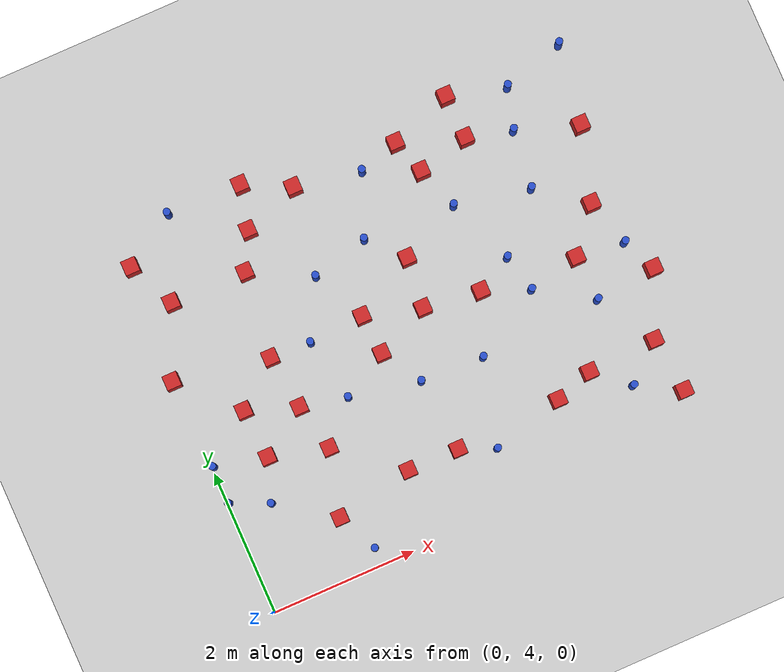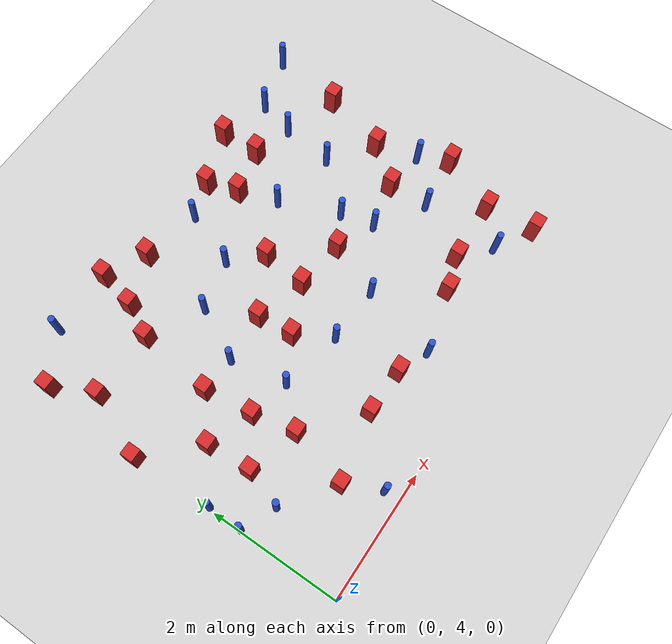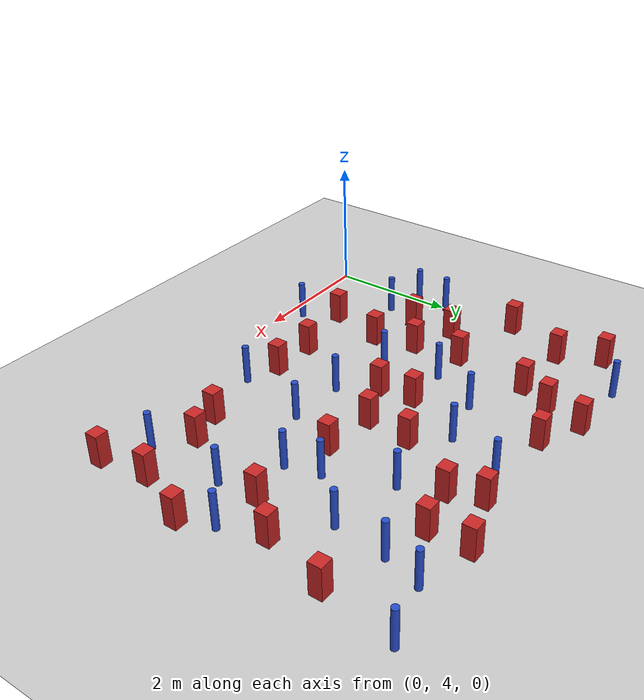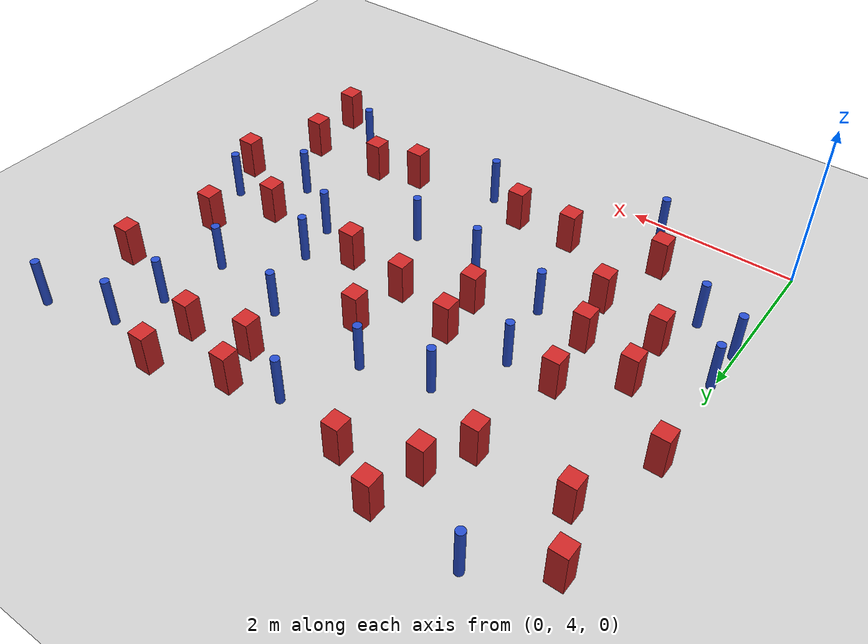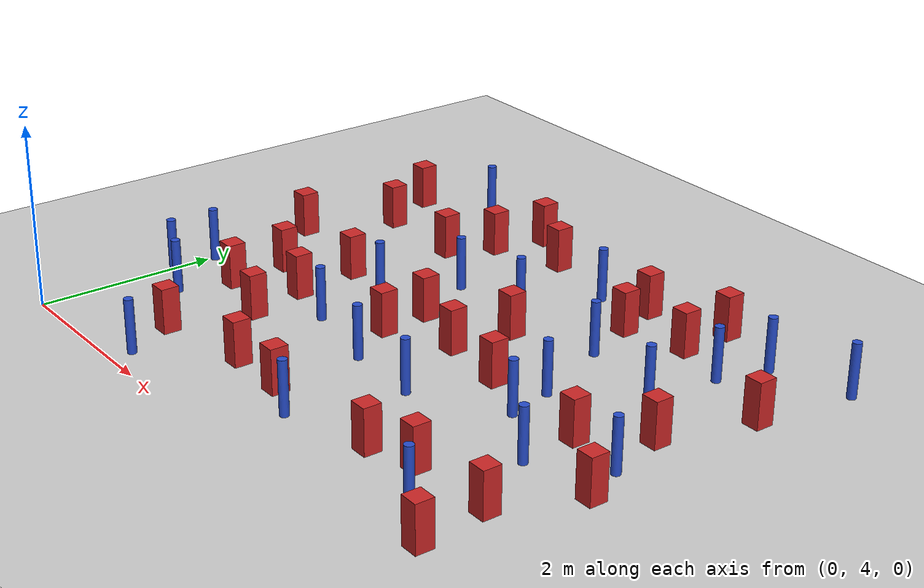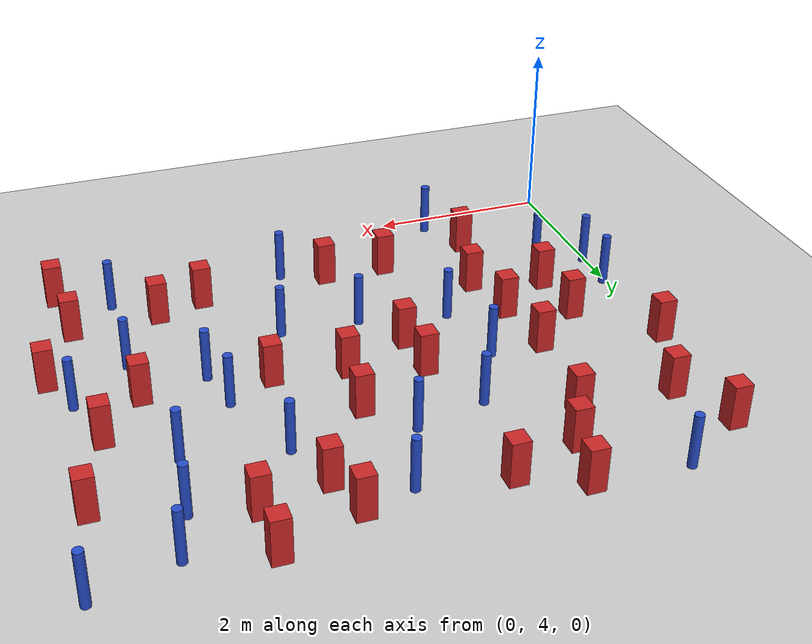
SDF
<sdf version="1.6">
 <world name="default">
  <model name="ground_plane">
   <static>1</static>
   <link name="link">
    <collision name="collision">
     <geometry><plane><normal>0 0 1</normal><size>100 100</size></plane></geometry>
     <surface><friction><ode><mu>100</mu><mu2>50</mu2></ode></friction></surface>
    </collision>
    <visual name="visual">
     <cast_shadows>0</cast_shadows>
     <geometry><plane><normal>0 0 1</normal><size>100 100</size></plane></geometry>
     <material>
      <ambient>1.0 1.0 1.0 1.0</ambient>
      <diffuse>0.8 0.8 0.8 1.0</diffuse>
      <specular>0.01 0.01 0.01 1.000000</specular>
     </material>
    </visual>
   </link>
  </model>
  <model name="pole_obstacle1">
   <static>true</static>
   <pose>0.818938187911 9.38292226318 2.88873142074e-08 -9.90536690779e-09 4.60219948967e-07 -1.20965994975e-07</pose>
   <link name="link">
    <pose>0 0 0.3 0 -0 0</pose>
    <inertial>
     <mass>1</mass>
     <inertia><ixx>0.145833</ixx><ixy>0</ixy><ixz>0</ixz><iyy>0.145833</iyy><iyz>0</iyz><izz>0.125</izz></inertia>
    </inertial>
    <collision name="collision">
     <geometry><cylinder><radius>0.05</radius><length>.6</length></cylinder></geometry>
    </collision>
    <visual name="visual">
     <geometry><cylinder><radius>0.05</radius><length>.6</length></cylinder></geometry>
     <material>
      <script><name>Gazebo/Blue</name><uri>file://media/materials/scripts/gazebo.material</uri></script>
     </material>
    </visual>
   </link>
  </model>
  <model name="square_post_obstacle10">
   <static>true</static>
   <pose>3.07662224585 4.99544792653 8.22691968438e-08 7.2212513382e-06 -7.54495500217e-07 2.29674213826e-05</pose>
   <link name="link">
    <pose>0 0 0.25 0 -0 0</pose>
    <inertial>
     <mass>100</mass>
     <inertia>
      <ixx>0.166667</ixx>
      <ixy>0</ixy>
      <ixz>0</ixz>
      <iyy>0.166667</iyy>
      <iyz>0</iyz>
      <izz>0.166667</izz>
     </inertia>
    </inertial>
    <collision name="collision"><geometry><box><size>.2 .2 .5</size></box></geometry></collision>
    <visual name="visual">
     <geometry><box><size>.2 .2 .5</size></box></geometry>
     <material>
      <script><name>Gazebo/Red</name><uri>file://media/materials/scripts/gazebo.material</uri></script>
     </material>
    </visual>
   </link>
  </model>
  <model name="square_post_obstacle19">
   <static>true</static>
   <pose>0.696296038342 6.5946302493 8.22691968438e-08 7.2212513382e-06 -7.54495500217e-07 2.29674213826e-05</pose>
   <link name="link">
    <pose>0 0 0.25 0 -0 0</pose>
    <inertial>
     <mass>100</mass>
     <inertia>
      <ixx>0.166667</ixx>
      <ixy>0</ixy>
      <ixz>0</ixz>
      <iyy>0.166667</iyy>
      <iyz>0</iyz>
      <izz>0.166667</izz>
     </inertia>
    </inertial>
    <collision name="collision"><geometry><box><size>.2 .2 .5</size></box></geometry></collision>
    <visual name="visual">
     <geometry><box><size>.2 .2 .5</size></box></geometry>
     <material>
      <script><name>Gazebo/Red</name><uri>file://media/materials/scripts/gazebo.material</uri></script>
     </material>
    </visual>
   </link>
  </model>
  <model name="square_post_obstacle21">
   <static>true</static>
   <pose>0.0914691414872 8.92870922852 8.22691968438e-08 7.22125133819e-06 -7.54495500217e-07 2.29674213826e-05</pose>
   <link name="link">
    <pose>0 0 0.25 0 -0 0</pose>
    <inertial>
     <mass>100</mass>
     <inertia>
      <ixx>0.166667</ixx>
      <ixy>0</ixy>
      <ixz>0</ixz>
      <iyy>0.166667</iyy>
      <iyz>0</iyz>
      <izz>0.166667</izz>
     </inertia>
    </inertial>
    <collision name="collision"><geometry><box><size>.2 .2 .5</size></box></geometry></collision>
    <visual name="visual">
     <geometry><box><size>.2 .2 .5</size></box></geometry>
     <material>
      <script><name>Gazebo/Red</name><uri>file://media/materials/scripts/gazebo.material</uri></script>
     </material>
    </visual>
   </link>
  </model>
  <model name="square_post_obstacle30">
   <static>true</static>
   <pose>5.52467905996 6.68495597494 8.22691968438e-08 7.2212513382e-06 -7.54495500217e-07 2.29674213826e-05</pose>
   <link name="link">
    <pose>0 0 0.25 0 -0 0</pose>
    <inertial>
     <mass>100</mass>
     <inertia>
      <ixx>0.166667</ixx>
      <ixy>0</ixy>
      <ixz>0</ixz>
      <iyy>0.166667</iyy>
      <iyz>0</iyz>
      <izz>0.166667</izz>
     </inertia>
    </inertial>
    <collision name="collision"><geometry><box><size>.2 .2 .5</size></box></geometry></collision>
    <visual name="visual">
     <geometry><box><size>.2 .2 .5</size></box></geometry>
     <material>
      <script><name>Gazebo/Red</name><uri>file://media/materials/scripts/gazebo.material</uri></script>
     </material>
    </visual>
   </link>
  </model>
  <model name="pole_obstacle20">
   <static>true</static>
   <pose>3.05607397523 8.02907908716 2.88873142074e-08 -9.90536689889e-09 4.60219948988e-07 -1.2096599496e-07</pose>
   <link name="link">
    <pose>0 0 0.3 0 -0 0</pose>
    <inertial>
     <mass>1</mass>
     <inertia><ixx>0.145833</ixx><ixy>0</ixy><ixz>0</ixz><iyy>0.145833</iyy><iyz>0</iyz><izz>0.125</izz></inertia>
    </inertial>
    <collision name="collision">
     <geometry><cylinder><radius>0.05</radius><length>.6</length></cylinder></geometry>
    </collision>
    <visual name="visual">
     <geometry><cylinder><radius>0.05</radius><length>.6</length></cylinder></geometry>
     <material>
      <script><name>Gazebo/Blue</name><uri>file://media/materials/scripts/gazebo.material</uri></script>
     </material>
    </visual>
   </link>
  </model>
  <model name="pole_obstacle21">
   <static>true</static>
   <pose>3.39437788019 8.86730025869 2.88873142074e-08 -9.90536692318e-09 4.6021994893e-07 -1.20965994988e-07</pose>
   <link name="link">
    <pose>0 0 0.3 0 -0 0</pose>
    <inertial>
     <mass>1</mass>
     <inertia><ixx>0.145833</ixx><ixy>0</ixy><ixz>0</ixz><iyy>0.145833</iyy><iyz>0</iyz><izz>0.125</izz></inertia>
    </inertial>
    <collision name="collision">
     <geometry><cylinder><radius>0.05</radius><length>.6</length></cylinder></geometry>
    </collision>
    <visual name="visual">
     <geometry><cylinder><radius>0.05</radius><length>.6</length></cylinder></geometry>
     <material>
      <script><name>Gazebo/Blue</name><uri>file://media/materials/scripts/gazebo.material</uri></script>
     </material>
    </visual>
   </link>
  </model>
  <model name="pole_obstacle36">
   <static>true</static>
   <pose>3.86885064316 5.97085070829 2.88873142074e-08 -9.90536689859e-09 4.60219948989e-07 -1.20965994961e-07</pose>
   <link name="link">
    <pose>0 0 0.3 0 -0 0</pose>
    <inertial>
     <mass>1</mass>
     <inertia><ixx>0.145833</ixx><ixy>0</ixy><ixz>0</ixz><iyy>0.145833</iyy><iyz>0</iyz><izz>0.125</izz></inertia>
    </inertial>
    <collision name="collision">
     <geometry><cylinder><radius>0.05</radius><length>.6</length></cylinder></geometry>
    </collision>
    <visual name="visual">
     <geometry><cylinder><radius>0.05</radius><length>.6</length></cylinder></geometry>
     <material>
      <script><name>Gazebo/Blue</name><uri>file://media/materials/scripts/gazebo.material</uri></script>
     </material>
    </visual>
   </link>
  </model>
  <model name="square_post_obstacle40">
   <static>true</static>
   <pose>6.02420959965 5.27083902886 8.22691968438e-08 7.2212513382e-06 -7.54495500217e-07 2.29674213826e-05</pose>
   <link name="link">
    <pose>0 0 0.25 0 -0 0</pose>
    <inertial>
     <mass>100</mass>
     <inertia>
      <ixx>0.166667</ixx>
      <ixy>0</ixy>
      <ixz>0</ixz>
      <iyy>0.166667</iyy>
      <iyz>0</iyz>
      <izz>0.166667</izz>
     </inertia>
    </inertial>
    <collision name="collision"><geometry><box><size>.2 .2 .5</size></box></geometry></collision>
    <visual name="visual">
     <geometry><box><size>.2 .2 .5</size></box></geometry>
     <material>
      <script><name>Gazebo/Red</name><uri>file://media/materials/scripts/gazebo.material</uri></script>
     </material>
    </visual>
   </link>
  </model>
  <model name="pole_obstacle44">
   <static>true</static>
   <pose>5.55828492342 6.05838840263 2.88873142074e-08 -9.90536690842e-09 4.60219948965e-07 -1.20965994976e-07</pose>
   <link name="link">
    <pose>0 0 0.3 0 -0 0</pose>
    <inertial>
     <mass>1</mass>
     <inertia><ixx>0.145833</ixx><ixy>0</ixy><ixz>0</ixz><iyy>0.145833</iyy><iyz>0</iyz><izz>0.125</izz></inertia>
    </inertial>
    <collision name="collision">
     <geometry><cylinder><radius>0.05</radius><length>.6</length></cylinder></geometry>
    </collision>
    <visual name="visual">
     <geometry><cylinder><radius>0.05</radius><length>.6</length></cylinder></geometry>
     <material>
      <script><name>Gazebo/Blue</name><uri>file://media/materials/scripts/gazebo.material</uri></script>
     </material>
    </visual>
   </link>
  </model>
  <model name="pole_obstacle47">
   <static>true</static>
   <pose>2.02509802277 6.20400029091 2.88873142074e-08 -9.90536689932e-09 4.60219948987e-07 -1.20965994962e-07</pose>
   <link name="link">
    <pose>0 0 0.3 0 -0 0</pose>
    <inertial>
     <mass>1</mass>
     <inertia><ixx>0.145833</ixx><ixy>0</ixy><ixz>0</ixz><iyy>0.145833</iyy><iyz>0</iyz><izz>0.125</izz></inertia>
    </inertial>
    <collision name="collision">
     <geometry><cylinder><radius>0.05</radius><length>.6</length></cylinder></geometry>
    </collision>
    <visual name="visual">
     <geometry><cylinder><radius>0.05</radius><length>.6</length></cylinder></geometry>
     <material>
      <script><name>Gazebo/Blue</name><uri>file://media/materials/scripts/gazebo.material</uri></script>
     </material>
    </visual>
   </link>
  </model>
  <model name="pole_obstacle49">
   <static>true</static>
   <pose>1.8610477603 7.06374855598 2.88873142074e-08 -9.90536689852e-09 4.60219948989e-07 -1.2096599496e-07</pose>
   <link name="link">
    <pose>0 0 0.3 0 -0 0</pose>
    <inertial>
     <mass>1</mass>
     <inertia><ixx>0.145833</ixx><ixy>0</ixy><ixz>0</ixz><iyy>0.145833</iyy><iyz>0</iyz><izz>0.125</izz></inertia>
    </inertial>
    <collision name="collision">
     <geometry><cylinder><radius>0.05</radius><length>.6</length></cylinder></geometry>
    </collision>
    <visual name="visual">
     <geometry><cylinder><radius>0.05</radius><length>.6</length></cylinder></geometry>
     <material>
      <script><name>Gazebo/Blue</name><uri>file://media/materials/scripts/gazebo.material</uri></script>
     </material>
    </visual>
   </link>
  </model>
  <model name="square_post_obstacle50">
   <static>true</static>
   <pose>1.44462593734 8.26347804715 8.22691968438e-08 7.22125133819e-06 -7.54495500217e-07 2.29674213826e-05</pose>
   <link name="link">
    <pose>0 0 0.25 0 -0 0</pose>
    <inertial>
     <mass>100</mass>
     <inertia>
      <ixx>0.166667</ixx>
      <ixy>0</ixy>
      <ixz>0</ixz>
      <iyy>0.166667</iyy>
      <iyz>0</iyz>
      <izz>0.166667</izz>
     </inertia>
    </inertial>
    <collision name="collision"><geometry><box><size>.2 .2 .5</size></box></geometry></collision>
    <visual name="visual">
     <geometry><box><size>.2 .2 .5</size></box></geometry>
     <material>
      <script><name>Gazebo/Red</name><uri>file://media/materials/scripts/gazebo.material</uri></script>
     </material>
    </visual>
   </link>
  </model>
  <model name="pole_obstacle53">
   <static>true</static>
   <pose>2.99472432864 6.01085723953 2.88873142074e-08 -9.90536689859e-09 4.60219948989e-07 -1.20965994961e-07</pose>
   <link name="link">
    <pose>0 0 0.3 0 -0 0</pose>
    <inertial>
     <mass>1</mass>
     <inertia><ixx>0.145833</ixx><ixy>0</ixy><ixz>0</ixz><iyy>0.145833</iyy><iyz>0</iyz><izz>0.125</izz></inertia>
    </inertial>
    <collision name="collision">
     <geometry><cylinder><radius>0.05</radius><length>.6</length></cylinder></geometry>
    </collision>
    <visual name="visual">
     <geometry><cylinder><radius>0.05</radius><length>.6</length></cylinder></geometry>
     <material>
      <script><name>Gazebo/Blue</name><uri>file://media/materials/scripts/gazebo.material</uri></script>
     </material>
    </visual>
   </link>
  </model>
  <model name="square_post_obstacle57">
   <static>true</static>
   <pose>1.3860376505 6.34641231645 8.22691968438e-08 7.2212513382e-06 -7.54495500217e-07 2.29674213826e-05</pose>
   <link name="link">
    <pose>0 0 0.25 0 -0 0</pose>
    <inertial>
     <mass>100</mass>
     <inertia>
      <ixx>0.166667</ixx>
      <ixy>0</ixy>
      <ixz>0</ixz>
      <iyy>0.166667</iyy>
      <iyz>0</iyz>
      <izz>0.166667</izz>
     </inertia>
    </inertial>
    <collision name="collision"><geometry><box><size>.2 .2 .5</size></box></geometry></collision>
    <visual name="visual">
     <geometry><box><size>.2 .2 .5</size></box></geometry>
     <material>
      <script><name>Gazebo/Red</name><uri>file://media/materials/scripts/gazebo.material</uri></script>
     </material>
    </visual>
   </link>
  </model>
  <model name="square_post_obstacle58">
   <static>true</static>
   <pose>0.394200493721 8.2850986965 8.22691968438e-08 7.22125133819e-06 -7.54495500217e-07 2.29674213826e-05</pose>
   <link name="link">
    <pose>0 0 0.25 0 -0 0</pose>
    <inertial>
     <mass>100</mass>
     <inertia>
      <ixx>0.166667</ixx>
      <ixy>0</ixy>
      <ixz>0</ixz>
      <iyy>0.166667</iyy>
      <iyz>0</iyz>
      <izz>0.166667</izz>
     </inertia>
    </inertial>
    <collision name="collision"><geometry><box><size>.2 .2 .5</size></box></geometry></collision>
    <visual name="visual">
     <geometry><box><size>.2 .2 .5</size></box></geometry>
     <material>
      <script><name>Gazebo/Red</name><uri>file://media/materials/scripts/gazebo.material</uri></script>
     </material>
    </visual>
   </link>
  </model>
  <model name="pole_obstacle57">
   <static>true</static>
   <pose>4.31938081154 7.96444868808 2.88873142074e-08 -9.90536689847e-09 4.60219948989e-07 -1.2096599496e-07</pose>
   <link name="link">
    <pose>0 0 0.3 0 -0 0</pose>
    <inertial>
     <mass>1</mass>
     <inertia><ixx>0.145833</ixx><ixy>0</ixy><ixz>0</ixz><iyy>0.145833</iyy><iyz>0</iyz><izz>0.125</izz></inertia>
    </inertial>
    <collision name="collision">
     <geometry><cylinder><radius>0.05</radius><length>.6</length></cylinder></geometry>
    </collision>
    <visual name="visual">
     <geometry><cylinder><radius>0.05</radius><length>.6</length></cylinder></geometry>
     <material>
      <script><name>Gazebo/Blue</name><uri>file://media/materials/scripts/gazebo.material</uri></script>
     </material>
    </visual>
   </link>
  </model>
  <model name="pole_obstacle65">
   <static>true</static>
   <pose>5.60729604322 9.11785191339 2.88873142074e-08 -9.9053668967e-09 4.60219948993e-07 -1.20965994957e-07</pose>
   <link name="link">
    <pose>0 0 0.3 0 -0 0</pose>
    <inertial>
     <mass>1</mass>
     <inertia><ixx>0.145833</ixx><ixy>0</ixy><ixz>0</ixz><iyy>0.145833</iyy><iyz>0</iyz><izz>0.125</izz></inertia>
    </inertial>
    <collision name="collision">
     <geometry><cylinder><radius>0.05</radius><length>.6</length></cylinder></geometry>
    </collision>
    <visual name="visual">
     <geometry><cylinder><radius>0.05</radius><length>.6</length></cylinder></geometry>
     <material>
      <script><name>Gazebo/Blue</name><uri>file://media/materials/scripts/gazebo.material</uri></script>
     </material>
    </visual>
   </link>
  </model>
  <model name="square_post_obstacle71">
   <static>true</static>
   <pose>4.80502723521 9.3317093234 8.22691968438e-08 7.22125133819e-06 -7.54495500217e-07 2.29674213826e-05</pose>
   <link name="link">
    <pose>0 0 0.25 0 -0 0</pose>
    <inertial>
     <mass>100</mass>
     <inertia>
      <ixx>0.166667</ixx>
      <ixy>0</ixy>
      <ixz>0</ixz>
      <iyy>0.166667</iyy>
      <iyz>0</iyz>
      <izz>0.166667</izz>
     </inertia>
    </inertial>
    <collision name="collision"><geometry><box><size>.2 .2 .5</size></box></geometry></collision>
    <visual name="visual">
     <geometry><box><size>.2 .2 .5</size></box></geometry>
     <material>
      <script><name>Gazebo/Red</name><uri>file://media/materials/scripts/gazebo.material</uri></script>
     </material>
    </visual>
   </link>
  </model>
  <model name="pole_obstacle78">
   <static>true</static>
   <pose>0.0298193744701 6.08151341072 2.88873142074e-08 -9.90536689629e-09 4.60219948994e-07 -1.20965994958e-07</pose>
   <link name="link">
    <pose>0 0 0.3 0 -0 0</pose>
    <inertial>
     <mass>1</mass>
     <inertia><ixx>0.145833</ixx><ixy>0</ixy><ixz>0</ixz><iyy>0.145833</iyy><iyz>0</iyz><izz>0.125</izz></inertia>
    </inertial>
    <collision name="collision">
     <geometry><cylinder><radius>0.05</radius><length>.6</length></cylinder></geometry>
    </collision>
    <visual name="visual">
     <geometry><cylinder><radius>0.05</radius><length>.6</length></cylinder></geometry>
     <material>
      <script><name>Gazebo/Blue</name><uri>file://media/materials/scripts/gazebo.material</uri></script>
     </material>
    </visual>
   </link>
  </model>
  <model name="pole_obstacle83">
   <static>true</static>
   <pose>3.5563684331 4.79494951425 2.88873142074e-08 -9.90536689859e-09 4.60219948989e-07 -1.20965994961e-07</pose>
   <link name="link">
    <pose>0 0 0.3 0 -0 0</pose>
    <inertial>
     <mass>1</mass>
     <inertia><ixx>0.145833</ixx><ixy>0</ixy><ixz>0</ixz><iyy>0.145833</iyy><iyz>0</iyz><izz>0.125</izz></inertia>
    </inertial>
    <collision name="collision">
     <geometry><cylinder><radius>0.05</radius><length>.6</length></cylinder></geometry>
    </collision>
    <visual name="visual">
     <geometry><cylinder><radius>0.05</radius><length>.6</length></cylinder></geometry>
     <material>
      <script><name>Gazebo/Blue</name><uri>file://media/materials/scripts/gazebo.material</uri></script>
     </material>
    </visual>
   </link>
  </model>
  <model name="pole_obstacle91">
   <static>true</static>
   <pose>4.81289988623 6.53082087713 2.88873142074e-08 -9.90536690842e-09 4.60219948965e-07 -1.20965994976e-07</pose>
   <link name="link">
    <pose>0 0 0.3 0 -0 0</pose>
    <inertial>
     <mass>1</mass>
     <inertia><ixx>0.145833</ixx><ixy>0</ixy><ixz>0</ixz><iyy>0.145833</iyy><iyz>0</iyz><izz>0.125</izz></inertia>
    </inertial>
    <collision name="collision">
     <geometry><cylinder><radius>0.05</radius><length>.6</length></cylinder></geometry>
    </collision>
    <visual name="visual">
     <geometry><cylinder><radius>0.05</radius><length>.6</length></cylinder></geometry>
     <material>
      <script><name>Gazebo/Blue</name><uri>file://media/materials/scripts/gazebo.material</uri></script>
     </material>
    </visual>
   </link>
  </model>
  <model name="pole_obstacle96">
   <static>true</static>
   <pose>4.69165500217 7.04844368104 2.88873142074e-08 -9.90536690842e-09 4.60219948965e-07 -1.20965994976e-07</pose>
   <link name="link">
    <pose>0 0 0.3 0 -0 0</pose>
    <inertial>
     <mass>1</mass>
     <inertia><ixx>0.145833</ixx><ixy>0</ixy><ixz>0</ixz><iyy>0.145833</iyy><iyz>0</iyz><izz>0.125</izz></inertia>
    </inertial>
    <collision name="collision">
     <geometry><cylinder><radius>0.05</radius><length>.6</length></cylinder></geometry>
    </collision>
    <visual name="visual">
     <geometry><cylinder><radius>0.05</radius><length>.6</length></cylinder></geometry>
     <material>
      <script><name>Gazebo/Blue</name><uri>file://media/materials/scripts/gazebo.material</uri></script>
     </material>
    </visual>
   </link>
  </model>
  <model name="square_post_obstacle87">
   <static>true</static>
   <pose>6.11257025935 4.50438272773 8.22691968438e-08 7.2212513382e-06 -7.54495500217e-07 2.29674213826e-05</pose>
   <link name="link">
    <pose>0 0 0.25 0 -0 0</pose>
    <inertial>
     <mass>100</mass>
     <inertia>
      <ixx>0.166667</ixx>
      <ixy>0</ixy>
      <ixz>0</ixz>
      <iyy>0.166667</iyy>
      <iyz>0</iyz>
      <izz>0.166667</izz>
     </inertia>
    </inertial>
    <collision name="collision"><geometry><box><size>.2 .2 .5</size></box></geometry></collision>
    <visual name="visual">
     <geometry><box><size>.2 .2 .5</size></box></geometry>
     <material>
      <script><name>Gazebo/Red</name><uri>file://media/materials/scripts/gazebo.material</uri></script>
     </material>
    </visual>
   </link>
  </model>
  <model name="square_post_obstacle91">
   <static>true</static>
   <pose>5.99464000352 7.25642860006 8.22691968438e-08 7.2212513382e-06 -7.54495500217e-07 2.29674213826e-05</pose>
   <link name="link">
    <pose>0 0 0.25 0 -0 0</pose>
    <inertial>
     <mass>100</mass>
     <inertia>
      <ixx>0.166667</ixx>
      <ixy>0</ixy>
      <ixz>0</ixz>
      <iyy>0.166667</iyy>
      <iyz>0</iyz>
      <izz>0.166667</izz>
     </inertia>
    </inertial>
    <collision name="collision"><geometry><box><size>.2 .2 .5</size></box></geometry></collision>
    <visual name="visual">
     <geometry><box><size>.2 .2 .5</size></box></geometry>
     <material>
      <script><name>Gazebo/Red</name><uri>file://media/materials/scripts/gazebo.material</uri></script>
     </material>
    </visual>
   </link>
  </model>
  <model name="pole_obstacle104">
   <static>true</static>
   <pose>5.35095448469 7.75868151535 2.88873142074e-08 -9.90536690842e-09 4.60219948965e-07 -1.20965994976e-07</pose>
   <link name="link">
    <pose>0 0 0.3 0 -0 0</pose>
    <inertial>
     <mass>1</mass>
     <inertia><ixx>0.145833</ixx><ixy>0</ixy><ixz>0</ixz><iyy>0.145833</iyy><iyz>0</iyz><izz>0.125</izz></inertia>
    </inertial>
    <collision name="collision">
     <geometry><cylinder><radius>0.05</radius><length>.6</length></cylinder></geometry>
    </collision>
    <visual name="visual">
     <geometry><cylinder><radius>0.05</radius><length>.6</length></cylinder></geometry>
     <material>
      <script><name>Gazebo/Blue</name><uri>file://media/materials/scripts/gazebo.material</uri></script>
     </material>
    </visual>
   </link>
  </model>
  <model name="pole_obstacle108">
   <static>true</static>
   <pose>0.0247074292438 5.56035641664 2.88873142074e-08 -9.90536689629e-09 4.60219948994e-07 -1.20965994958e-07</pose>
   <link name="link">
    <pose>0 0 0.3 0 -0 0</pose>
    <inertial>
     <mass>1</mass>
     <inertia><ixx>0.145833</ixx><ixy>0</ixy><ixz>0</ixz><iyy>0.145833</iyy><iyz>0</iyz><izz>0.125</izz></inertia>
    </inertial>
    <collision name="collision">
     <geometry><cylinder><radius>0.05</radius><length>.6</length></cylinder></geometry>
    </collision>
    <visual name="visual">
     <geometry><cylinder><radius>0.05</radius><length>.6</length></cylinder></geometry>
     <material>
      <script><name>Gazebo/Blue</name><uri>file://media/materials/scripts/gazebo.material</uri></script>
     </material>
    </visual>
   </link>
  </model>
  <model name="square_post_obstacle96">
   <static>true</static>
   <pose>5.07026670415 5.22998945914 8.22691968438e-08 7.2212513382e-06 -7.54495500217e-07 2.29674213826e-05</pose>
   <link name="link">
    <pose>0 0 0.25 0 -0 0</pose>
    <inertial>
     <mass>100</mass>
     <inertia>
      <ixx>0.166667</ixx>
      <ixy>0</ixy>
      <ixz>0</ixz>
      <iyy>0.166667</iyy>
      <iyz>0</iyz>
      <izz>0.166667</izz>
     </inertia>
    </inertial>
    <collision name="collision"><geometry><box><size>.2 .2 .5</size></box></geometry></collision>
    <visual name="visual">
     <geometry><box><size>.2 .2 .5</size></box></geometry>
     <material>
      <script><name>Gazebo/Red</name><uri>file://media/materials/scripts/gazebo.material</uri></script>
     </material>
    </visual>
   </link>
  </model>
  <model name="square_post_obstacle98">
   <static>true</static>
   <pose>3.9497054828 9.03497192703 8.22691968438e-08 7.22125133819e-06 -7.54495500217e-07 2.29674213826e-05</pose>
   <link name="link">
    <pose>0 0 0.25 0 -0 0</pose>
    <inertial>
     <mass>100</mass>
     <inertia>
      <ixx>0.166667</ixx>
      <ixy>0</ixy>
      <ixz>0</ixz>
      <iyy>0.166667</iyy>
      <iyz>0</iyz>
      <izz>0.166667</izz>
     </inertia>
    </inertial>
    <collision name="collision"><geometry><box><size>.2 .2 .5</size></box></geometry></collision>
    <visual name="visual">
     <geometry><box><size>.2 .2 .5</size></box></geometry>
     <material>
      <script><name>Gazebo/Red</name><uri>file://media/materials/scripts/gazebo.material</uri></script>
     </material>
    </visual>
   </link>
  </model>
  <model name="pole_obstacle112">
   <static>true</static>
   <pose>6.45662675286 9.36352094301 2.88873142074e-08 -9.9053668967e-09 4.60219948993e-07 -1.20965994957e-07</pose>
   <link name="link">
    <pose>0 0 0.3 0 -0 0</pose>
    <inertial>
     <mass>1</mass>
     <inertia><ixx>0.145833</ixx><ixy>0</ixy><ixz>0</ixz><iyy>0.145833</iyy><iyz>0</iyz><izz>0.125</izz></inertia>
    </inertial>
    <collision name="collision">
     <geometry><cylinder><radius>0.05</radius><length>.6</length></cylinder></geometry>
    </collision>
    <visual name="visual">
     <geometry><cylinder><radius>0.05</radius><length>.6</length></cylinder></geometry>
     <material>
      <script><name>Gazebo/Blue</name><uri>file://media/materials/scripts/gazebo.material</uri></script>
     </material>
    </visual>
   </link>
  </model>
  <model name="square_post_obstacle99">
   <static>true</static>
   <pose>2.47696452127 9.03879350178 8.22691968438e-08 7.22125133819e-06 -7.54495500217e-07 2.29674213826e-05</pose>
   <link name="link">
    <pose>0 0 0.25 0 -0 0</pose>
    <inertial>
     <mass>100</mass>
     <inertia>
      <ixx>0.166667</ixx>
      <ixy>0</ixy>
      <ixz>0</ixz>
      <iyy>0.166667</iyy>
      <iyz>0</iyz>
      <izz>0.166667</izz>
     </inertia>
    </inertial>
    <collision name="collision"><geometry><box><size>.2 .2 .5</size></box></geometry></collision>
    <visual name="visual">
     <geometry><box><size>.2 .2 .5</size></box></geometry>
     <material>
      <script><name>Gazebo/Red</name><uri>file://media/materials/scripts/gazebo.material</uri></script>
     </material>
    </visual>
   </link>
  </model>
  <model name="square_post_obstacle102">
   <static>true</static>
   <pose>6.28789063676 8.26705183617 8.22691968438e-08 7.22125133819e-06 -7.54495500217e-07 2.29674213826e-05</pose>
   <link name="link">
    <pose>0 0 0.25 0 -0 0</pose>
    <inertial>
     <mass>100</mass>
     <inertia>
      <ixx>0.166667</ixx>
      <ixy>0</ixy>
      <ixz>0</ixz>
      <iyy>0.166667</iyy>
      <iyz>0</iyz>
      <izz>0.166667</izz>
     </inertia>
    </inertial>
    <collision name="collision"><geometry><box><size>.2 .2 .5</size></box></geometry></collision>
    <visual name="visual">
     <geometry><box><size>.2 .2 .5</size></box></geometry>
     <material>
      <script><name>Gazebo/Red</name><uri>file://media/materials/scripts/gazebo.material</uri></script>
     </material>
    </visual>
   </link>
  </model>
  <model name="square_post_obstacle107">
   <static>true</static>
   <pose>3.47872595966 7.57702035392 8.22691968438e-08 7.2212513382e-06 -7.54495500217e-07 2.29674213826e-05</pose>
   <link name="link">
    <pose>0 0 0.25 0 -0 0</pose>
    <inertial>
     <mass>100</mass>
     <inertia>
      <ixx>0.166667</ixx>
      <ixy>0</ixy>
      <ixz>0</ixz>
      <iyy>0.166667</iyy>
      <iyz>0</iyz>
      <izz>0.166667</izz>
     </inertia>
    </inertial>
    <collision name="collision"><geometry><box><size>.2 .2 .5</size></box></geometry></collision>
    <visual name="visual">
     <geometry><box><size>.2 .2 .5</size></box></geometry>
     <material>
      <script><name>Gazebo/Red</name><uri>file://media/materials/scripts/gazebo.material</uri></script>
     </material>
    </visual>
   </link>
  </model>
  <model name="square_post_obstacle125">
   <static>true</static>
   <pose>1.84663593193 9.34934636765 8.22691968438e-08 7.22125133819e-06 -7.54495500217e-07 2.29674213826e-05</pose>
   <link name="link">
    <pose>0 0 0.25 0 -0 0</pose>
    <inertial>
     <mass>100</mass>
     <inertia>
      <ixx>0.166667</ixx>
      <ixy>0</ixy>
      <ixz>0</ixz>
      <iyy>0.166667</iyy>
      <iyz>0</iyz>
      <izz>0.166667</izz>
     </inertia>
    </inertial>
    <collision name="collision"><geometry><box><size>.2 .2 .5</size></box></geometry></collision>
    <visual name="visual">
     <geometry><box><size>.2 .2 .5</size></box></geometry>
     <material>
      <script><name>Gazebo/Red</name><uri>file://media/materials/scripts/gazebo.material</uri></script>
     </material>
    </visual>
   </link>
  </model>
  <model name="square_post_obstacle129">
   <static>true</static>
   <pose>4.10897817959 8.55547626355 8.22691968438e-08 7.22125133819e-06 -7.54495500217e-07 2.29674213826e-05</pose>
   <link name="link">
    <pose>0 0 0.25 0 -0 0</pose>
    <inertial>
     <mass>100</mass>
     <inertia>
      <ixx>0.166667</ixx>
      <ixy>0</ixy>
      <ixz>0</ixz>
      <iyy>0.166667</iyy>
      <iyz>0</iyz>
      <izz>0.166667</izz>
     </inertia>
    </inertial>
    <collision name="collision"><geometry><box><size>.2 .2 .5</size></box></geometry></collision>
    <visual name="visual">
     <geometry><box><size>.2 .2 .5</size></box></geometry>
     <material>
      <script><name>Gazebo/Red</name><uri>file://media/materials/scripts/gazebo.material</uri></script>
     </material>
    </visual>
   </link>
  </model>
  <model name="square_post_obstacle134">
   <static>true</static>
   <pose>6.39773428244 6.14302495743 8.22691968438e-08 7.2212513382e-06 -7.54495500217e-07 2.29674213826e-05</pose>
   <link name="link">
    <pose>0 0 0.25 0 -0 0</pose>
    <inertial>
     <mass>100</mass>
     <inertia>
      <ixx>0.166667</ixx>
      <ixy>0</ixy>
      <ixz>0</ixz>
      <iyy>0.166667</iyy>
      <iyz>0</iyz>
      <izz>0.166667</izz>
     </inertia>
    </inertial>
    <collision name="collision"><geometry><box><size>.2 .2 .5</size></box></geometry></collision>
    <visual name="visual">
     <geometry><box><size>.2 .2 .5</size></box></geometry>
     <material>
      <script><name>Gazebo/Red</name><uri>file://media/materials/scripts/gazebo.material</uri></script>
     </material>
    </visual>
   </link>
  </model>
  <model name="square_post_obstacle137">
   <static>true</static>
   <pose>1.29621336785 7.09221476327 8.22691968438e-08 7.2212513382e-06 -7.54495500217e-07 2.29674213826e-05</pose>
   <link name="link">
    <pose>0 0 0.25 0 -0 0</pose>
    <inertial>
     <mass>100</mass>
     <inertia>
      <ixx>0.166667</ixx>
      <ixy>0</ixy>
      <ixz>0</ixz>
      <iyy>0.166667</iyy>
      <iyz>0</iyz>
      <izz>0.166667</izz>
     </inertia>
    </inertial>
    <collision name="collision"><geometry><box><size>.2 .2 .5</size></box></geometry></collision>
    <visual name="visual">
     <geometry><box><size>.2 .2 .5</size></box></geometry>
     <material>
      <script><name>Gazebo/Red</name><uri>file://media/materials/scripts/gazebo.material</uri></script>
     </material>
    </visual>
   </link>
  </model>
  <model name="square_post_obstacle142">
   <static>true</static>
   <pose>1.53004888128 5.69344700926 8.22691968438e-08 7.2212513382e-06 -7.54495500217e-07 2.29674213826e-05</pose>
   <link name="link">
    <pose>0 0 0.25 0 -0 0</pose>
    <inertial>
     <mass>100</mass>
     <inertia>
      <ixx>0.166667</ixx>
      <ixy>0</ixy>
      <ixz>0</ixz>
      <iyy>0.166667</iyy>
      <iyz>0</iyz>
      <izz>0.166667</izz>
     </inertia>
    </inertial>
    <collision name="collision"><geometry><box><size>.2 .2 .5</size></box></geometry></collision>
    <visual name="visual">
     <geometry><box><size>.2 .2 .5</size></box></geometry>
     <material>
      <script><name>Gazebo/Red</name><uri>file://media/materials/scripts/gazebo.material</uri></script>
     </material>
    </visual>
   </link>
  </model>
  <model name="square_post_obstacle143">
   <static>true</static>
   <pose>3.40234271754 6.88571079444 8.22691968438e-08 7.2212513382e-06 -7.54495500217e-07 2.29674213826e-05</pose>
   <link name="link">
    <pose>0 0 0.25 0 -0 0</pose>
    <inertial>
     <mass>100</mass>
     <inertia>
      <ixx>0.166667</ixx>
      <ixy>0</ixy>
      <ixz>0</ixz>
      <iyy>0.166667</iyy>
      <iyz>0</iyz>
      <izz>0.166667</izz>
     </inertia>
    </inertial>
    <collision name="collision"><geometry><box><size>.2 .2 .5</size></box></geometry></collision>
    <visual name="visual">
     <geometry><box><size>.2 .2 .5</size></box></geometry>
     <material>
      <script><name>Gazebo/Red</name><uri>file://media/materials/scripts/gazebo.material</uri></script>
     </material>
    </visual>
   </link>
  </model>
  <model name="pole_obstacle154">
   <static>true</static>
   <pose>5.44630436506 8.55635396547 2.88873142074e-08 -9.9053668967e-09 4.60219948993e-07 -1.20965994957e-07</pose>
   <link name="link">
    <pose>0 0 0.3 0 -0 0</pose>
    <inertial>
     <mass>1</mass>
     <inertia><ixx>0.145833</ixx><ixy>0</ixy><ixz>0</ixz><iyy>0.145833</iyy><iyz>0</iyz><izz>0.125</izz></inertia>
    </inertial>
    <collision name="collision">
     <geometry><cylinder><radius>0.05</radius><length>.6</length></cylinder></geometry>
    </collision>
    <visual name="visual">
     <geometry><cylinder><radius>0.05</radius><length>.6</length></cylinder></geometry>
     <material>
      <script><name>Gazebo/Blue</name><uri>file://media/materials/scripts/gazebo.material</uri></script>
     </material>
    </visual>
   </link>
  </model>
  <model name="square_post_obstacle152">
   <static>true</static>
   <pose>1.70225498256 8.7564539453 8.22691968438e-08 7.22125133819e-06 -7.54495500217e-07 2.29674213826e-05</pose>
   <link name="link">
    <pose>0 0 0.25 0 -0 0</pose>
    <inertial>
     <mass>100</mass>
     <inertia>
      <ixx>0.166667</ixx>
      <ixy>0</ixy>
      <ixz>0</ixz>
      <iyy>0.166667</iyy>
      <iyz>0</iyz>
      <izz>0.166667</izz>
     </inertia>
    </inertial>
    <collision name="collision"><geometry><box><size>.2 .2 .5</size></box></geometry></collision>
    <visual name="visual">
     <geometry><box><size>.2 .2 .5</size></box></geometry>
     <material>
      <script><name>Gazebo/Red</name><uri>file://media/materials/scripts/gazebo.material</uri></script>
     </material>
    </visual>
   </link>
  </model>
  <model name="pole_obstacle161">
   <static>true</static>
   <pose>5.52823953445 4.83210420272 2.88873142074e-08 -9.90536690842e-09 4.60219948965e-07 -1.20965994976e-07</pose>
   <link name="link">
    <pose>0 0 0.3 0 -0 0</pose>
    <inertial>
     <mass>1</mass>
     <inertia><ixx>0.145833</ixx><ixy>0</ixy><ixz>0</ixz><iyy>0.145833</iyy><iyz>0</iyz><izz>0.125</izz></inertia>
    </inertial>
    <collision name="collision">
     <geometry><cylinder><radius>0.05</radius><length>.6</length></cylinder></geometry>
    </collision>
    <visual name="visual">
     <geometry><cylinder><radius>0.05</radius><length>.6</length></cylinder></geometry>
     <material>
      <script><name>Gazebo/Blue</name><uri>file://media/materials/scripts/gazebo.material</uri></script>
     </material>
    </visual>
   </link>
  </model>
  <model name="square_post_obstacle158">
   <static>true</static>
   <pose>4.82042719128 8.72453342476 8.22691968438e-08 7.22125133819e-06 -7.54495500217e-07 2.29674213826e-05</pose>
   <link name="link">
    <pose>0 0 0.25 0 -0 0</pose>
    <inertial>
     <mass>100</mass>
     <inertia>
      <ixx>0.166667</ixx>
      <ixy>0</ixy>
      <ixz>0</ixz>
      <iyy>0.166667</iyy>
      <iyz>0</iyz>
      <izz>0.166667</izz>
     </inertia>
    </inertial>
    <collision name="collision"><geometry><box><size>.2 .2 .5</size></box></geometry></collision>
    <visual name="visual">
     <geometry><box><size>.2 .2 .5</size></box></geometry>
     <material>
      <script><name>Gazebo/Red</name><uri>file://media/materials/scripts/gazebo.material</uri></script>
     </material>
    </visual>
   </link>
  </model>
  <model name="pole_obstacle169">
   <static>true</static>
   <pose>0.538503939322 5.33198400917 2.88873142074e-08 -9.90536689714e-09 4.60219948992e-07 -1.20965994957e-07</pose>
   <link name="link">
    <pose>0 0 0.3 0 -0 0</pose>
    <inertial>
     <mass>1</mass>
     <inertia><ixx>0.145833</ixx><ixy>0</ixy><ixz>0</ixz><iyy>0.145833</iyy><iyz>0</iyz><izz>0.125</izz></inertia>
    </inertial>
    <collision name="collision">
     <geometry><cylinder><radius>0.05</radius><length>.6</length></cylinder></geometry>
    </collision>
    <visual name="visual">
     <geometry><cylinder><radius>0.05</radius><length>.6</length></cylinder></geometry>
     <material>
      <script><name>Gazebo/Blue</name><uri>file://media/materials/scripts/gazebo.material</uri></script>
     </material>
    </visual>
   </link>
  </model>
  <model name="square_post_obstacle176">
   <static>true</static>
   <pose>2.36335857764 5.00536258323 8.22691968438e-08 7.2212513382e-06 -7.54495500217e-07 2.29674213826e-05</pose>
   <link name="link">
    <pose>0 0 0.25 0 -0 0</pose>
    <inertial>
     <mass>100</mass>
     <inertia>
      <ixx>0.166667</ixx>
      <ixy>0</ixy>
      <ixz>0</ixz>
      <iyy>0.166667</iyy>
      <iyz>0</iyz>
      <izz>0.166667</izz>
     </inertia>
    </inertial>
    <collision name="collision"><geometry><box><size>.2 .2 .5</size></box></geometry></collision>
    <visual name="visual">
     <geometry><box><size>.2 .2 .5</size></box></geometry>
     <material>
      <script><name>Gazebo/Red</name><uri>file://media/materials/scripts/gazebo.material</uri></script>
     </material>
    </visual>
   </link>
  </model>
  <model name="square_post_obstacle178">
   <static>true</static>
   <pose>4.19253881263 6.78500948913 8.22691968438e-08 7.2212513382e-06 -7.54495500217e-07 2.29674213826e-05</pose>
   <link name="link">
    <pose>0 0 0.25 0 -0 0</pose>
    <inertial>
     <mass>100</mass>
     <inertia>
      <ixx>0.166667</ixx>
      <ixy>0</ixy>
      <ixz>0</ixz>
      <iyy>0.166667</iyy>
      <iyz>0</iyz>
      <izz>0.166667</izz>
     </inertia>
    </inertial>
    <collision name="collision"><geometry><box><size>.2 .2 .5</size></box></geometry></collision>
    <visual name="visual">
     <geometry><box><size>.2 .2 .5</size></box></geometry>
     <material>
      <script><name>Gazebo/Red</name><uri>file://media/materials/scripts/gazebo.material</uri></script>
     </material>
    </visual>
   </link>
  </model>
  <model name="square_post_obstacle188">
   <static>true</static>
   <pose>1.29127785185 4.79758697932 8.22691968438e-08 7.2212513382e-06 -7.54495500217e-07 2.29674213826e-05</pose>
   <link name="link">
    <pose>0 0 0.25 0 -0 0</pose>
    <inertial>
     <mass>100</mass>
     <inertia>
      <ixx>0.166667</ixx>
      <ixy>0</ixy>
      <ixz>0</ixz>
      <iyy>0.166667</iyy>
      <iyz>0</iyz>
      <izz>0.166667</izz>
     </inertia>
    </inertial>
    <collision name="collision"><geometry><box><size>.2 .2 .5</size></box></geometry></collision>
    <visual name="visual">
     <geometry><box><size>.2 .2 .5</size></box></geometry>
     <material>
      <script><name>Gazebo/Red</name><uri>file://media/materials/scripts/gazebo.material</uri></script>
     </material>
    </visual>
   </link>
  </model>
  <model name="square_post_obstacle189">
   <static>true</static>
   <pose>4.54522379849 5.0623935658 8.22691968438e-08 7.2212513382e-06 -7.54495500217e-07 2.29674213826e-05</pose>
   <link name="link">
    <pose>0 0 0.25 0 -0 0</pose>
    <inertial>
     <mass>100</mass>
     <inertia>
      <ixx>0.166667</ixx>
      <ixy>0</ixy>
      <ixz>0</ixz>
      <iyy>0.166667</iyy>
      <iyz>0</iyz>
      <izz>0.166667</izz>
     </inertia>
    </inertial>
    <collision name="collision"><geometry><box><size>.2 .2 .5</size></box></geometry></collision>
    <visual name="visual">
     <geometry><box><size>.2 .2 .5</size></box></geometry>
     <material>
      <script><name>Gazebo/Red</name><uri>file://media/materials/scripts/gazebo.material</uri></script>
     </material>
    </visual>
   </link>
  </model>
  <model name="square_post_obstacle196">
   <static>true</static>
   <pose>0.739091685676 5.91001556353 8.22691968438e-08 7.2212513382e-06 -7.54495500217e-07 2.29674213826e-05</pose>
   <link name="link">
    <pose>0 0 0.25 0 -0 0</pose>
    <inertial>
     <mass>100</mass>
     <inertia>
      <ixx>0.166667</ixx>
      <ixy>0</ixy>
      <ixz>0</ixz>
      <iyy>0.166667</iyy>
      <iyz>0</iyz>
      <izz>0.166667</izz>
     </inertia>
    </inertial>
    <collision name="collision"><geometry><box><size>.2 .2 .5</size></box></geometry></collision>
    <visual name="visual">
     <geometry><box><size>.2 .2 .5</size></box></geometry>
     <material>
      <script><name>Gazebo/Red</name><uri>file://media/materials/scripts/gazebo.material</uri></script>
     </material>
    </visual>
   </link>
  </model>
  <model name="square_post_obstacle200">
   <static>true</static>
   <pose>-0.0136862514058 7.32512305782 8.22691968438e-08 7.2212513382e-06 -7.54495500217e-07 2.29674213826e-05</pose>
   <link name="link">
    <pose>0 0 0.25 0 -0 0</pose>
    <inertial>
     <mass>100</mass>
     <inertia>
      <ixx>0.166667</ixx>
      <ixy>0</ixy>
      <ixz>0</ixz>
      <iyy>0.166667</iyy>
      <iyz>0</iyz>
      <izz>0.166667</izz>
     </inertia>
    </inertial>
    <collision name="collision"><geometry><box><size>.2 .2 .5</size></box></geometry></collision>
    <visual name="visual">
     <geometry><box><size>.2 .2 .5</size></box></geometry>
     <material>
      <script><name>Gazebo/Red</name><uri>file://media/materials/scripts/gazebo.material</uri></script>
     </material>
    </visual>
   </link>
  </model>
  <model name="square_post_obstacle205">
   <static>true</static>
   <pose>2.66314425007 6.55769819864 8.22691968438e-08 7.2212513382e-06 -7.54495500217e-07 2.29674213826e-05</pose>
   <link name="link">
    <pose>0 0 0.25 0 -0 0</pose>
    <inertial>
     <mass>100</mass>
     <inertia>
      <ixx>0.166667</ixx>
      <ixy>0</ixy>
      <ixz>0</ixz>
      <iyy>0.166667</iyy>
      <iyz>0</iyz>
      <izz>0.166667</izz>
     </inertia>
    </inertial>
    <collision name="collision"><geometry><box><size>.2 .2 .5</size></box></geometry></collision>
    <visual name="visual">
     <geometry><box><size>.2 .2 .5</size></box></geometry>
     <material>
      <script><name>Gazebo/Red</name><uri>file://media/materials/scripts/gazebo.material</uri></script>
     </material>
    </visual>
   </link>
  </model>
  <model name="pole_obstacle194">
   <static>true</static>
   <pose>6.19021375557 6.60846958464 2.88873142074e-08 -9.90536690842e-09 4.60219948965e-07 -1.20965994976e-07</pose>
   <link name="link">
    <pose>0 0 0.3 0 -0 0</pose>
    <inertial>
     <mass>1</mass>
     <inertia><ixx>0.145833</ixx><ixy>0</ixy><ixz>0</ixz><iyy>0.145833</iyy><iyz>0</iyz><izz>0.125</izz></inertia>
    </inertial>
    <collision name="collision">
     <geometry><cylinder><radius>0.05</radius><length>.6</length></cylinder></geometry>
    </collision>
    <visual name="visual">
     <geometry><cylinder><radius>0.05</radius><length>.6</length></cylinder></geometry>
     <material>
      <script><name>Gazebo/Blue</name><uri>file://media/materials/scripts/gazebo.material</uri></script>
     </material>
    </visual>
   </link>
  </model>
  <model name="pole_obstacle196">
   <static>true</static>
   <pose>2.27365831317 7.83598226872 2.88873142074e-08 -9.90536689859e-09 4.60219948989e-07 -1.20965994961e-07</pose>
   <link name="link">
    <pose>0 0 0.3 0 -0 0</pose>
    <inertial>
     <mass>1</mass>
     <inertia><ixx>0.145833</ixx><ixy>0</ixy><ixz>0</ixz><iyy>0.145833</iyy><iyz>0</iyz><izz>0.125</izz></inertia>
    </inertial>
    <collision name="collision">
     <geometry><cylinder><radius>0.05</radius><length>.6</length></cylinder></geometry>
    </collision>
    <visual name="visual">
     <geometry><cylinder><radius>0.05</radius><length>.6</length></cylinder></geometry>
     <material>
      <script><name>Gazebo/Blue</name><uri>file://media/materials/scripts/gazebo.material</uri></script>
     </material>
    </visual>
   </link>
  </model>
  <model name="pole_obstacle202">
   <static>true</static>
   <pose>1.54941722166 4.24670965578 2.88873142074e-08 -9.90536689852e-09 4.60219948989e-07 -1.2096599496e-07</pose>
   <link name="link">
    <pose>0 0 0.3 0 -0 0</pose>
    <inertial>
     <mass>1</mass>
     <inertia><ixx>0.145833</ixx><ixy>0</ixy><ixz>0</ixz><iyy>0.145833</iyy><iyz>0</iyz><izz>0.125</izz></inertia>
    </inertial>
    <collision name="collision">
     <geometry><cylinder><radius>0.05</radius><length>.6</length></cylinder></geometry>
    </collision>
    <visual name="visual">
     <geometry><cylinder><radius>0.05</radius><length>.6</length></cylinder></geometry>
     <material>
      <script><name>Gazebo/Blue</name><uri>file://media/materials/scripts/gazebo.material</uri></script>
     </material>
    </visual>
   </link>
  </model>
  <model name="square_post_obstacle220">
   <static>true</static>
   <pose>2.62350003262 7.11162996466 8.22691968438e-08 7.2212513382e-06 -7.54495500217e-07 2.29674213826e-05</pose>
   <link name="link">
    <pose>0 0 0.25 0 -0 0</pose>
    <inertial>
     <mass>100</mass>
     <inertia>
      <ixx>0.166667</ixx>
      <ixy>0</ixy>
      <ixz>0</ixz>
      <iyy>0.166667</iyy>
      <iyz>0</iyz>
      <izz>0.166667</izz>
     </inertia>
    </inertial>
    <collision name="collision"><geometry><box><size>.2 .2 .5</size></box></geometry></collision>
    <visual name="visual">
     <geometry><box><size>.2 .2 .5</size></box></geometry>
     <material>
      <script><name>Gazebo/Red</name><uri>file://media/materials/scripts/gazebo.material</uri></script>
     </material>
    </visual>
   </link>
  </model>
 </world>
</sdf>
